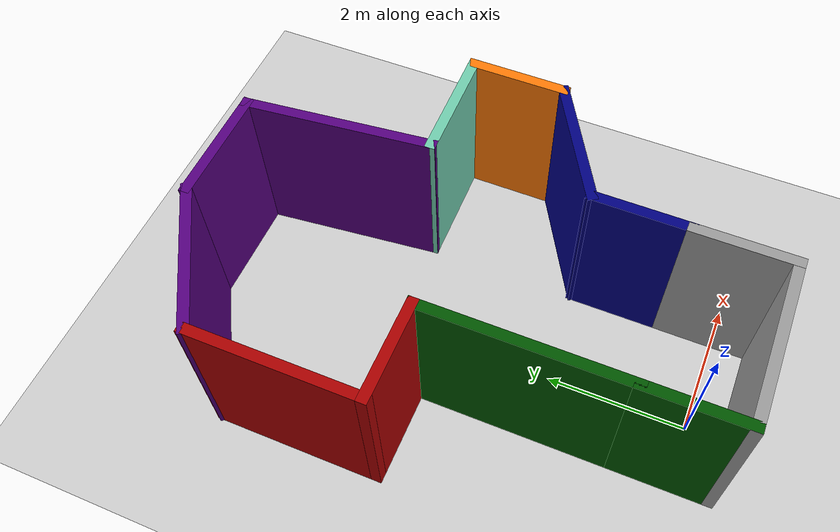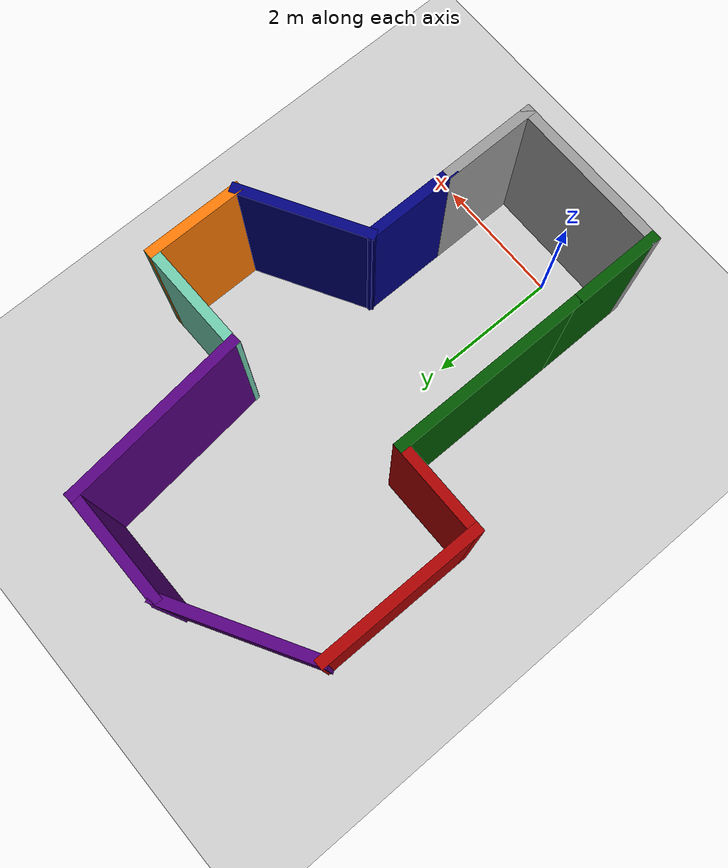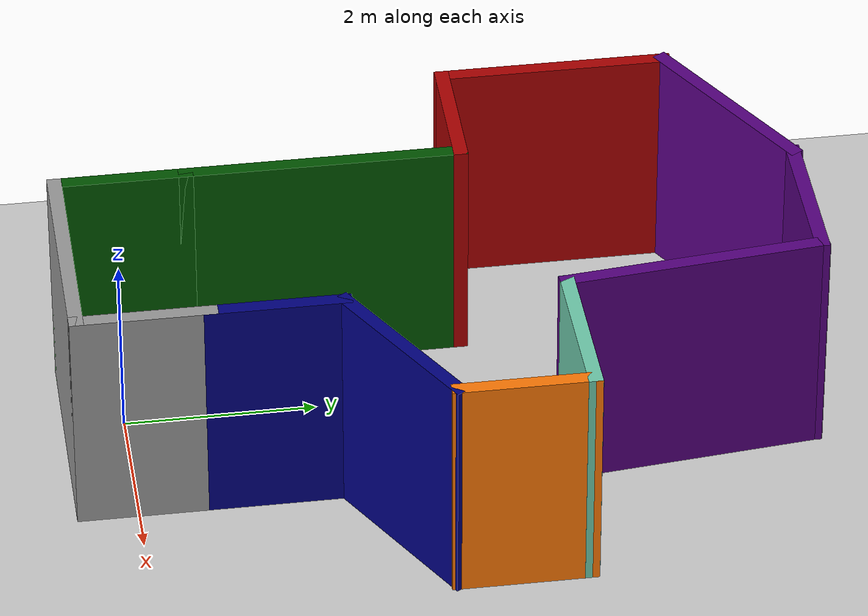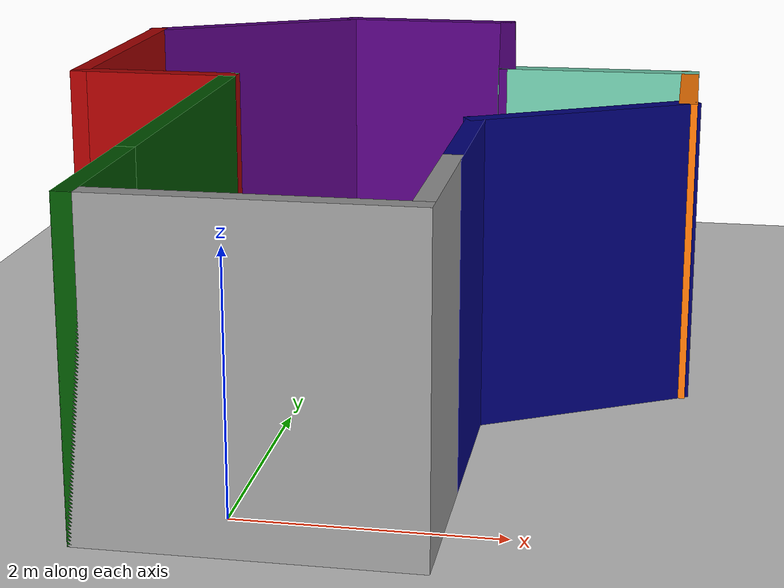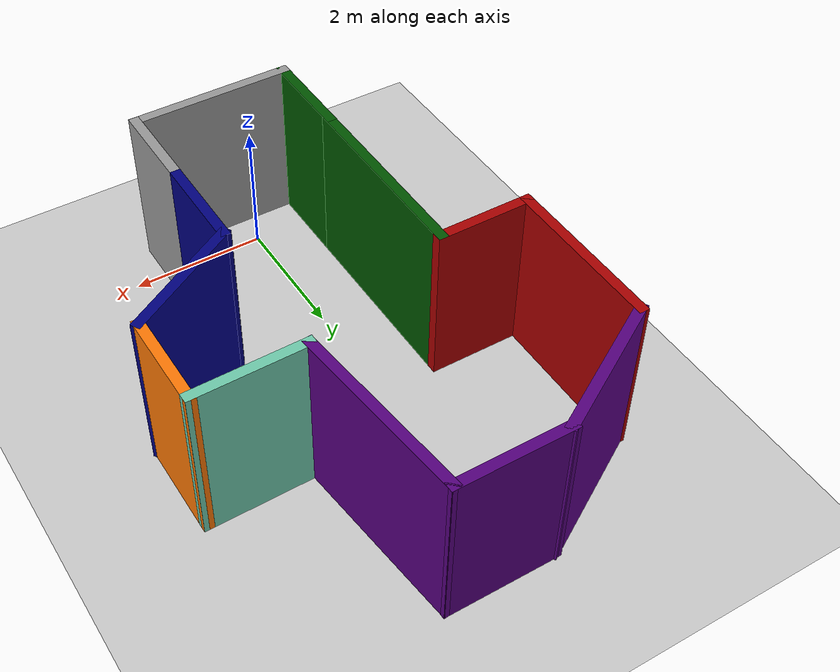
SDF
<sdf version="1.6">
 <world name="default">
  <light name="sun" type="directional">
   <pose>0 0 10 0 -0 0</pose>
   <diffuse>0.8 0.8 0.8 1</diffuse>
   <specular>0.2 0.2 0.2 1</specular>
   <attenuation>
    <range>1000</range>
    <constant>0.9</constant>
    <linear>0.01</linear>
    <quadratic>0.001</quadratic>
   </attenuation>
   <direction>-0.5 0.1 -0.9</direction>
  </light>
  <model name="ground_plane">
   <static>1</static>
   <link name="link">
    <collision name="collision">
     <geometry><plane><normal>0 0 1</normal><size>100 100</size></plane></geometry>
     <surface>
      <contact><collide_bitmask>65535</collide_bitmask></contact>
      <friction><ode><mu>100</mu><mu2>50</mu2></ode></friction>
     </surface>
    </collision>
    <visual name="visual">
     <cast_shadows>0</cast_shadows>
     <geometry><plane><normal>0 0 1</normal><size>100 100</size></plane></geometry>
     <material>
      <script><uri>file://media/materials/scripts/gazebo.material</uri><name>Gazebo/Grey</name></script>
     </material>
    </visual>
   </link>
  </model>
  <gravity>0 0 -9.8</gravity>
  <magnetic_field>6e-06 2.3e-05 -4.2e-05</magnetic_field>
  <atmosphere type="adiabatic"/>
  <physics name="default_physics" default="0" type="ode">
   <max_step_size>0.001</max_step_size>
   <real_time_factor>1</real_time_factor>
   <real_time_update_rate>1000</real_time_update_rate>
  </physics>
  <scene><ambient>0.4 0.4 0.4 1</ambient><background>0.7 0.7 0.7 1</background><shadows>1</shadows></scene>
  <spherical_coordinates>
   <surface_model>EARTH_WGS84</surface_model>
   <latitude_deg>0</latitude_deg>
   <longitude_deg>0</longitude_deg>
   <elevation>0</elevation>
   <heading_deg>0</heading_deg>
  </spherical_coordinates>
  <model name="walls">
   <pose>0.413043 3.2564 0 0 -0 0</pose>
   <link name="Wall_12">
    <collision name="Wall_12_Collision">
     <geometry><box><size>1.75234 0.15 2.5</size></box></geometry>
     <pose>0 0 1.25 0 -0 0</pose>
    </collision>
    <visual name="Wall_12_Visual">
     <pose>0 0 1.25 0 -0 0</pose>
     <geometry><box><size>1.75234 0.15 2.5</size></box></geometry>
     <material>
      <script><uri>file://media/materials/scripts/gazebo.material</uri><name>Gazebo/Grey</name></script>
      <ambient>0.435294 0.796078 0.67451 1</ambient>
     </material>
     <meta><layer>0</layer></meta>
    </visual>
    <pose>1.85 1.14877 0 0 -0 0.015603</pose>
   </link>
   <link name="Wall_17">
    <collision name="Wall_17_Collision">
     <geometry><box><size>1.5 0.15 2.5</size></box></geometry>
     <pose>0 0 1.25 0 -0 0</pose>
    </collision>
    <visual name="Wall_17_Visual">
     <pose>0 0 1.25 0 -0 0</pose>
     <geometry><box><size>1.5 0.15 2.5</size></box></geometry>
     <material>
      <script><uri>file://media/materials/scripts/gazebo.material</uri><name>Gazebo/Grey</name></script>
      <ambient>0.666667 0 0 1</ambient>
     </material>
     <meta><layer>0</layer></meta>
    </visual>
    <pose>-1.97607 0.386274 0 0 -0 3.14159</pose>
   </link>
   <link name="Wall_18">
    <collision name="Wall_18_Collision">
     <geometry><box><size>2.5 0.15 2.5</size></box></geometry>
     <pose>0 0 1.25 0 -0 0</pose>
    </collision>
    <visual name="Wall_18_Visual">
     <pose>0 0 1.25 0 -0 0</pose>
     <geometry><box><size>2.5 0.15 2.5</size></box></geometry>
     <material>
      <script><uri>file://media/materials/scripts/gazebo.material</uri><name>Gazebo/Grey</name></script>
      <ambient>0.666667 0 0 1</ambient>
     </material>
     <meta><layer>0</layer></meta>
    </visual>
    <pose>-2.65107 1.56127 0 0 -0 1.5708</pose>
   </link>
   <link name="Wall_19">
    <collision name="Wall_19_Collision">
     <geometry><box><size>2.25 0.15 2.5</size></box></geometry>
     <pose>0 0 1.25 0 -0 0</pose>
    </collision>
    <visual name="Wall_19_Visual">
     <pose>0 0 1.25 0 -0 0</pose>
     <geometry><box><size>2.25 0.15 2.5</size></box></geometry>
     <material>
      <script><uri>file://media/materials/scripts/gazebo.material</uri><name>Gazebo/Grey</name></script>
      <ambient>0.333333 0 0.498039 1</ambient>
     </material>
     <meta><layer>0</layer></meta>
    </visual>
    <pose>-1.74175 3.26127 0 0 -0 0.523599</pose>
   </link>
   <link name="Wall_2">
    <collision name="Wall_2_Collision">
     <geometry><box><size>3 0.15 2.5</size></box></geometry>
     <pose>0 0 1.25 0 -0 0</pose>
    </collision>
    <visual name="Wall_2_Visual">
     <pose>0 0 1.25 0 -0 0</pose>
     <geometry><box><size>3 0.15 2.5</size></box></geometry>
     <material>
      <script><uri>file://media/materials/scripts/gazebo.material</uri><name>Gazebo/Grey</name></script>
      <ambient>0 0.333333 0 1</ambient>
     </material>
     <meta><layer>0</layer></meta>
    </visual>
    <pose>-1.30107 -1.03873 0 0 -0 1.5708</pose>
   </link>
   <link name="Wall_20">
    <collision name="Wall_20_Collision">
     <geometry><box><size>1.75 0.15 2.5</size></box></geometry>
     <pose>0 0 1.25 0 -0 0</pose>
    </collision>
    <visual name="Wall_20_Visual">
     <pose>0 0 1.25 0 -0 0</pose>
     <geometry><box><size>1.75 0.15 2.5</size></box></geometry>
     <material>
      <script><uri>file://media/materials/scripts/gazebo.material</uri><name>Gazebo/Grey</name></script>
      <ambient>0.333333 0 0.498039 1</ambient>
     </material>
     <meta><layer>0</layer></meta>
    </visual>
    <pose>-0.03242 3.78627 0 0 -0 0</pose>
   </link>
   <link name="Wall_21">
    <collision name="Wall_21_Collision">
     <geometry><box><size>2.81489 0.15 2.5</size></box></geometry>
     <pose>0 0 1.25 0 -0 0</pose>
    </collision>
    <visual name="Wall_21_Visual">
     <pose>0 0 1.25 0 -0 0</pose>
     <geometry><box><size>2.81489 0.15 2.5</size></box></geometry>
     <material>
      <script><uri>file://media/materials/scripts/gazebo.material</uri><name>Gazebo/Grey</name></script>
      <ambient>0.333333 0 0.498039 1</ambient>
     </material>
     <meta><layer>0</layer></meta>
    </visual>
    <pose>0.908253 2.46127 0 0 0 -1.46502</pose>
   </link>
   <link name="Wall_23">
    <collision name="Wall_23_Collision">
     <geometry><box><size>1.5 0.15 2.5</size></box></geometry>
     <pose>0 0 1.25 0 -0 0</pose>
    </collision>
    <visual name="Wall_23_Visual">
     <pose>0 0 1.25 0 -0 0</pose>
     <geometry><box><size>1.5 0.15 2.5</size></box></geometry>
     <material>
      <script><uri>file://media/materials/scripts/gazebo.material</uri><name>Gazebo/Grey</name></script>
      <ambient>0 0.333333 0 1</ambient>
     </material>
     <meta><layer>0</layer></meta>
    </visual>
    <pose>-1.30107 -3.13873 0 0 0 -1.5708</pose>
   </link>
   <link name="Wall_24">
    <collision name="Wall_24_Collision">
     <geometry><box><size>2.5 0.15 2.5</size></box></geometry>
     <pose>0 0 1.25 0 -0 0</pose>
    </collision>
    <visual name="Wall_24_Visual">
     <pose>0 0 1.25 0 -0 0</pose>
     <geometry><box><size>2.5 0.15 2.5</size></box></geometry>
     <material>
      <script><uri>file://media/materials/scripts/gazebo.material</uri><name>Gazebo/Grey</name></script>
      <ambient>0 0 0 1</ambient>
     </material>
     <meta><layer>0</layer></meta>
    </visual>
    <pose>-0.126073 -3.81373 0 0 -0 0</pose>
   </link>
   <link name="Wall_25">
    <collision name="Wall_25_Collision">
     <geometry><box><size>1.5 0.15 2.5</size></box></geometry>
     <pose>0 0 1.25 0 -0 0</pose>
    </collision>
    <visual name="Wall_25_Visual">
     <pose>0 0 1.25 0 -0 0</pose>
     <geometry><box><size>1.5 0.15 2.5</size></box></geometry>
     <material>
      <script><uri>file://media/materials/scripts/gazebo.material</uri><name>Gazebo/Grey</name></script>
      <ambient>0 0 0 1</ambient>
     </material>
     <meta><layer>0</layer></meta>
    </visual>
    <pose>1.04893 -3.13873 0 0 -0 1.5708</pose>
   </link>
   <link name="Wall_5">
    <collision name="Wall_5_Collision">
     <geometry><box><size>1.5 0.15 2.5</size></box></geometry>
     <pose>0 0 1.25 0 -0 0</pose>
    </collision>
    <visual name="Wall_5_Visual">
     <pose>0 0 1.25 0 -0 0</pose>
     <geometry><box><size>1.5 0.15 2.5</size></box></geometry>
     <material>
      <script><uri>file://media/materials/scripts/gazebo.material</uri><name>Gazebo/Grey</name></script>
      <ambient>0 0 0.498039 1</ambient>
     </material>
     <meta><layer>0</layer></meta>
    </visual>
    <pose>1.04893 -1.78873 0 0 -0 1.5708</pose>
   </link>
   <link name="Wall_6">
    <collision name="Wall_6_Collision">
     <geometry><box><size>2 0.15 2.5</size></box></geometry>
     <pose>0 0 1.25 0 -0 0</pose>
    </collision>
    <visual name="Wall_6_Visual">
     <pose>0 0 1.25 0 -0 0</pose>
     <geometry><box><size>2 0.15 2.5</size></box></geometry>
     <material>
      <script><uri>file://media/materials/scripts/gazebo.material</uri><name>Gazebo/Grey</name></script>
      <ambient>0 0 0.498039 1</ambient>
     </material>
     <meta><layer>0</layer></meta>
    </visual>
    <pose>1.85 -0.651226 0 0 -0 0.523599</pose>
   </link>
   <link name="Wall_7">
    <collision name="Wall_7_Collision">
     <geometry><box><size>1.5 0.15 2.5</size></box></geometry>
     <pose>0 0 1.25 0 -0 0</pose>
    </collision>
    <visual name="Wall_7_Visual">
     <pose>0 0 1.25 0 -0 0</pose>
     <geometry><box><size>1.5 0.15 2.5</size></box></geometry>
     <material>
      <script><uri>file://media/materials/scripts/gazebo.material</uri><name>Gazebo/Grey</name></script>
      <ambient>0.996078 0.47451 0.0196078 1</ambient>
     </material>
     <meta><layer>0</layer></meta>
    </visual>
    <pose>2.65107 0.486274 0 0 -0 1.5708</pose>
   </link>
   <static>1</static>
  </model>
 </world>
</sdf>
